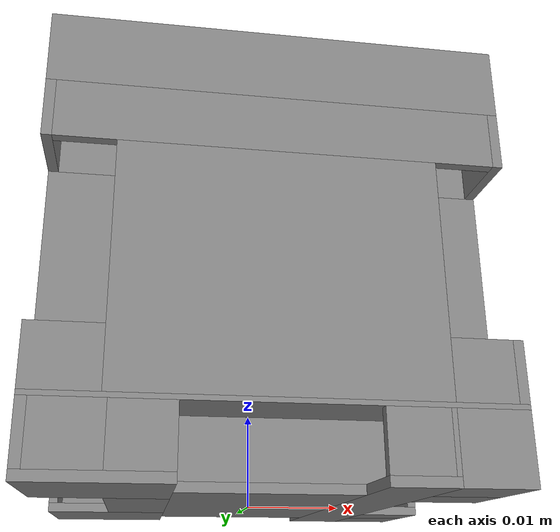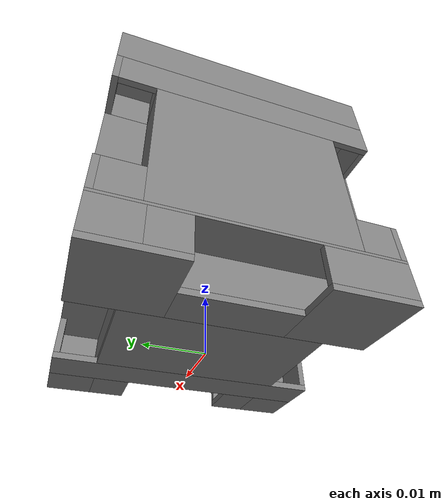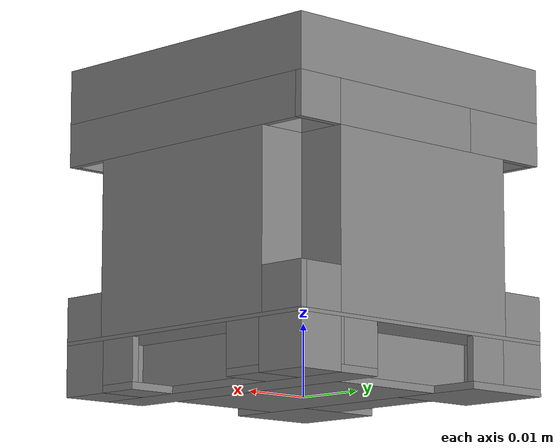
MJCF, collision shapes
<mujoco model="cozmo_cube">
  <compiler angle="radian" autolimits="true" inertiafromgeom="auto" meshdir="../assets/meshes" texturedir="../assets/textures"/>

  <default>
    <default class="cube_col">
      <geom type="box" group="3" friction="0.8 0.005 0.0001" density="326" contype="1" conaffinity="1"/>
    </default>
  </default>

  <asset>
    <mesh name="cube_mesh" content_type="model/obj" file="cube.obj" scale="0.001 0.001 0.001"/>

    <texture name="cube1_texture" type="cube" file="cube/cube1.png" gridsize="3 4" gridlayout=".R..FDBU.L.."/>
    <texture name="cube2_texture" type="cube" file="cube/cube2.png" gridsize="3 4" gridlayout=".R..FDBU.L.."/>
    <texture name="cube3_texture" type="cube" file="cube/cube3.png" gridsize="3 4" gridlayout=".R..FDBU.L.."/>
    <material name="cube1_material" texture="cube1_texture" specular="0.3" shininess="0.8"/>
    <material name="cube2_material" texture="cube2_texture" specular="0.3" shininess="0.8"/>
    <material name="cube3_material" texture="cube3_texture" specular="0.3" shininess="0.8"/>
  </asset>

  <worldbody>
    <body name="cube" pos="0 0 0.0225">
      <freejoint name="cube_joint"/>
      <site name="cube_imu" pos="0 0 0" size="0.001" group="4"/>

      <!-- Visual -->
      <geom name="cube_visual" type="mesh" mesh="cube_mesh" pos="0 0 -0.0225"
            contype="0" conaffinity="0" mass="0" group="0" material="cube1_material"/>

      <!-- Collision: primitive reconstruction, hidden (group 3) -->
      <!-- foot band: z 0.0 .. 1.0 mm from base -->
      <geom name="cc_foot_00" class="cube_col"
            size="0.009 0.0155 0.0005" pos="0 0 -0.022"/>
      <geom name="cc_foot_01" class="cube_col"
            size="0.0035 0.00375 0.0035" pos="0.019 -0.01875 -0.019"/>
      <geom name="cc_foot_02" class="cube_col"
            size="0.0035 0.00375 0.0035" pos="0.019 0.01875 -0.019"/>
      <geom name="cc_foot_03" class="cube_col"
            size="0.00325 0.0225 0.0005" pos="0.01225 0 -0.022"/>
      <geom name="cc_foot_04" class="cube_col"
            size="0.00675 0.00675 0.0005" pos="-0.01575 -0.01575 -0.022"/>
      <geom name="cc_foot_05" class="cube_col"
            size="0.00675 0.00675 0.0005" pos="-0.01575 0.01575 -0.022"/>
      <geom name="cc_foot_06" class="cube_col"
            size="0.00325 0.009 0.0005" pos="-0.01225 0 -0.022"/>
      <geom name="cc_foot_07" class="cube_col"
            size="0.0035 0.003 0.0005" pos="0.019 -0.012 -0.022"/>
      <geom name="cc_foot_08" class="cube_col"
            size="0.0035 0.003 0.0005" pos="0.019 0.012 -0.022"/>
      <!-- slot band: z 1.0 .. 7.0 mm from base -->
      <geom name="cc_slot_09" class="cube_col"
            size="0.01525 0.0155 0.003" pos="0.00025 0 -0.0185"/>
      <geom name="cc_slot_10" class="cube_col"
            size="0.00375 0.00375 0.003" pos="-0.01875 0.01875 -0.0185"/>
      <geom name="cc_slot_11" class="cube_col"
            size="0.00325 0.00375 0.003" pos="-0.01825 -0.01875 -0.0185"/>
      <geom name="cc_slot_12" class="cube_col"
            size="0.00025 0.015 0.003" pos="-0.01525 0 -0.0185"/>
      <geom name="cc_slot_13" class="cube_col"
            size="0.0005 0.00675 0.003" pos="-0.022 -0.01575 -0.0185"/>
      <geom name="cc_slot_14" class="cube_col"
            size="0.003 0.0005 0.003" pos="-0.012 -0.022 -0.0185"/>
      <geom name="cc_slot_15" class="cube_col"
            size="0.0005 0.003 0.003" pos="-0.022 0.012 -0.0185"/>
      <geom name="cc_slot_16" class="cube_col"
            size="0.0005 0.003 0.003" pos="0.022 -0.012 -0.0185"/>
      <geom name="cc_slot_17" class="cube_col"
            size="0.0005 0.003 0.003" pos="0.022 0.012 -0.0185"/>
      <geom name="cc_slot_18" class="cube_col"
            size="0.003 0.0005 0.003" pos="0.012 0.022 -0.0185"/>
      <geom name="cc_slot_19" class="cube_col"
            size="0.003 0.0005 0.003" pos="0.012 -0.022 -0.0185"/>
      <geom name="cc_slot_20" class="cube_col"
            size="0.003 0.0005 0.003" pos="-0.012 0.022 -0.0185"/>
      <geom name="cc_slot_21" class="cube_col"
            size="0.00025 0.0035 0.003" pos="0.01525 0.019 -0.0185"/>
      <geom name="cc_slot_22" class="cube_col"
            size="0.00025 0.0035 0.003" pos="0.01525 -0.019 -0.0185"/>
      <!-- shelf band: z 7.0 .. 7.5 mm from base -->
      <geom name="cc_shelf_23" class="cube_col"
            size="0.0225 0.0225 0.00025" pos="0 0 -0.01525"/>
      <!-- lopkt band: z 7.5 .. 31.5 mm from base -->
      <geom name="cc_lopkt_24" class="cube_col"
            size="0.0155 0.0225 0.012" pos="0 0 -0.003"/>
      <geom name="cc_lopkt_25" class="cube_col"
            size="0.0035 0.0155 0.012" pos="0.019 0 -0.003"/>
      <geom name="cc_lopkt_26" class="cube_col"
            size="0.0035 0.0155 0.012" pos="-0.019 0 -0.003"/>
      <geom name="cc_lopkt_27" class="cube_col"
            size="0.0035 0.0005 0.003" pos="-0.019 0.022 -0.012"/>
      <geom name="cc_lopkt_28" class="cube_col"
            size="0.0035 0.0005 0.003" pos="-0.019 -0.022 -0.012"/>
      <geom name="cc_lopkt_29" class="cube_col"
            size="0.0005 0.0035 0.003" pos="0.022 0.019 -0.012"/>
      <geom name="cc_lopkt_30" class="cube_col"
            size="0.0005 0.0035 0.003" pos="0.022 -0.019 -0.012"/>
      <geom name="cc_lopkt_31" class="cube_col"
            size="0.003 0.0005 0.003" pos="0.0185 0.022 -0.012"/>
      <geom name="cc_lopkt_32" class="cube_col"
            size="0.0005 0.003 0.003" pos="-0.022 0.0185 -0.012"/>
      <geom name="cc_lopkt_33" class="cube_col"
            size="0.003 0.0005 0.003" pos="0.0185 -0.022 -0.012"/>
      <geom name="cc_lopkt_34" class="cube_col"
            size="0.0005 0.003 0.003" pos="-0.022 -0.0185 -0.012"/>
      <!-- hipkt band: z 31.5 .. 37.5 mm from base -->
      <geom name="cc_hipkt_35" class="cube_col"
            size="0.0215 0.0155 0.003" pos="0 0 0.012"/>
      <geom name="cc_hipkt_36" class="cube_col"
            size="0.0155 0.003 0.003" pos="0 -0.0185 0.012"/>
      <geom name="cc_hipkt_37" class="cube_col"
            size="0.01225 0.0035 0.003" pos="0.00325 0.019 0.012"/>
      <geom name="cc_hipkt_38" class="cube_col"
            size="0.0005 0.022 0.003" pos="-0.022 -0.0005 0.012"/>
      <geom name="cc_hipkt_39" class="cube_col"
            size="0.0005 0.022 0.003" pos="0.022 -0.0005 0.012"/>
      <geom name="cc_hipkt_40" class="cube_col"
            size="0.0215 0.0005 0.003" pos="0 -0.022 0.012"/>
      <geom name="cc_hipkt_41" class="cube_col"
            size="0.00325 0.003 0.003" pos="-0.01225 0.0185 0.012"/>
      <geom name="cc_hipkt_42" class="cube_col"
            size="0.00675 0.0005 0.003" pos="-0.01575 0.022 0.012"/>
      <geom name="cc_hipkt_43" class="cube_col"
            size="0.0035 0.0005 0.003" pos="0.019 0.022 0.012"/>
      <!-- cap band: z 37.5 .. 45.0 mm from base -->
      <geom name="cc_cap_44" class="cube_col"
            size="0.0225 0.0225 0.00375" pos="0 0 0.01875"/>
    </body>
  </worldbody>

  <sensor>
    <accelerometer name="cube_accel" site="cube_imu"/>
  </sensor>
</mujoco>
